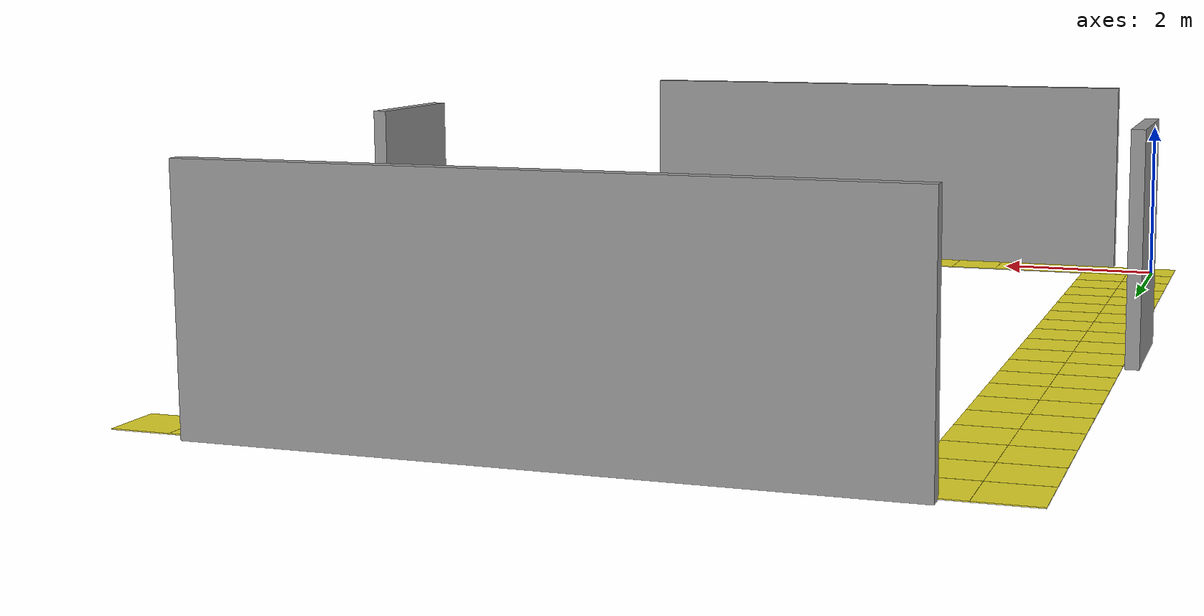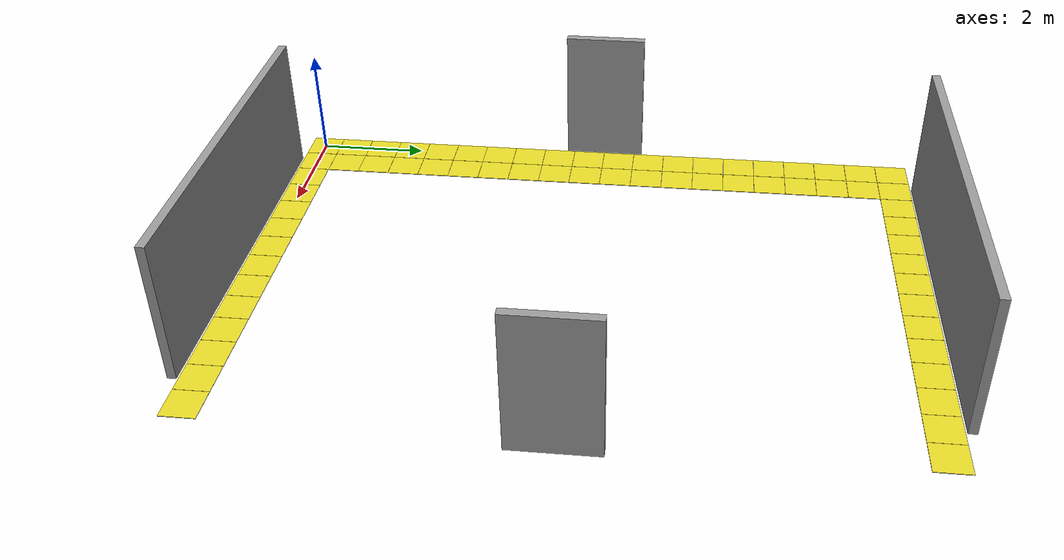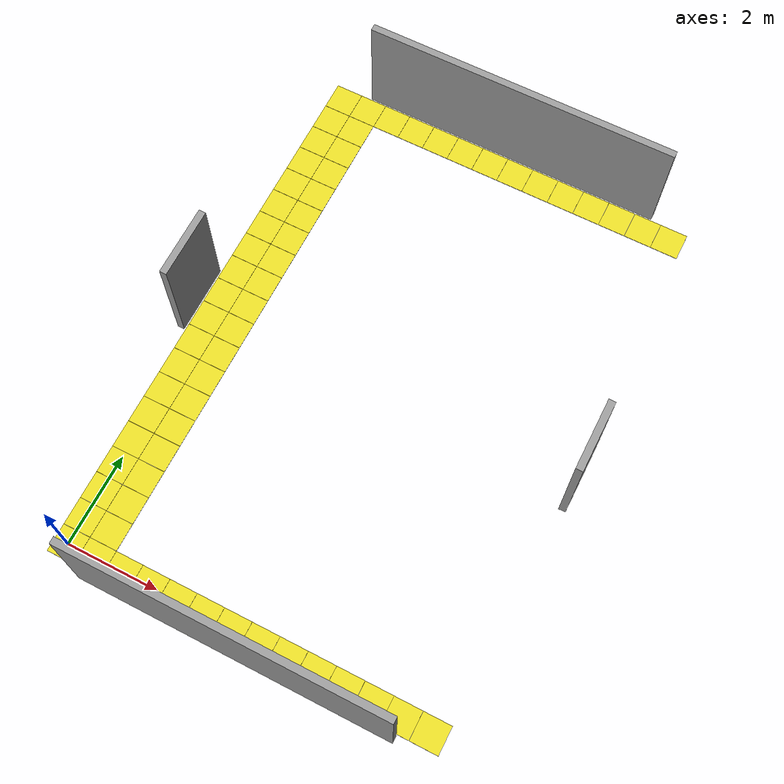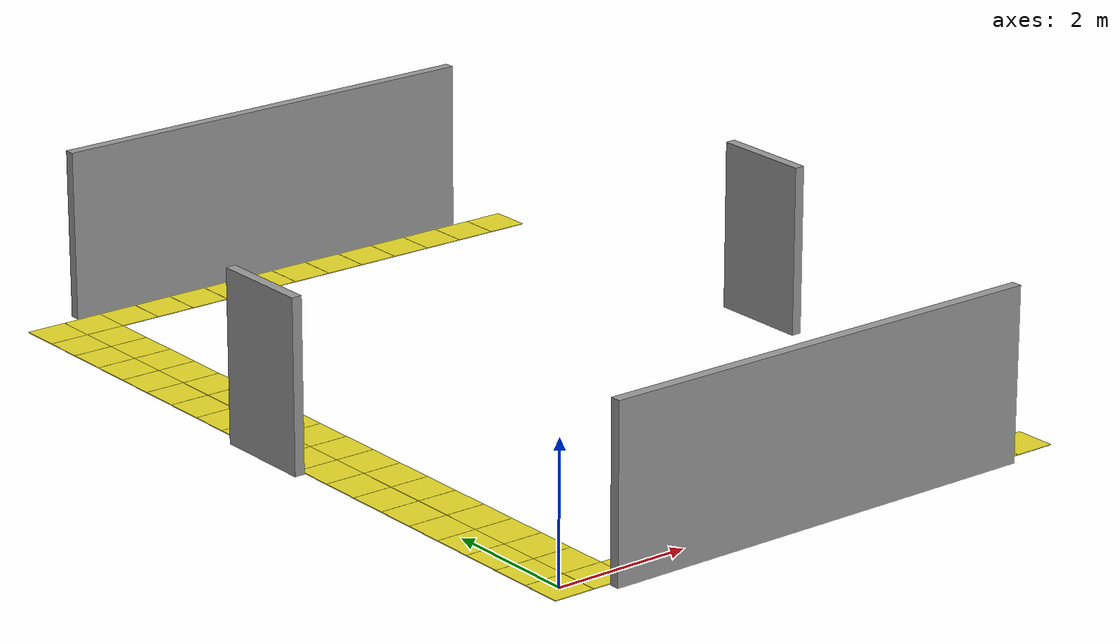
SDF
<?xml version='1.0'?>
<sdf version='1.7'>
<model  name='room_Yellow_60*60_kreuz'>
<pose>0 0 0 0 0 0</pose>
   <include><name>1</name><uri>model://Yellow_60*60</uri><pose>0 0 0.005 0 0 0</pose></include>
   <include><name>2</name><uri>model://Yellow_60*60</uri><pose>0 0.603 0.005 0 0 0</pose></include>
   <include><name>3</name><uri>model://Yellow_60*60</uri><pose>0 1.206 0.005 0 0 0</pose></include>
   <include><name>4</name><uri>model://Yellow_60*60</uri><pose>0 1.809 0.005 0 0 0</pose></include>
   <include><name>5</name><uri>model://Yellow_60*60</uri><pose>0 2.412 0.005 0 0 0</pose></include>
   <include><name>6</name><uri>model://Yellow_60*60</uri><pose>0 3.015 0.005 0 0 0</pose></include>
   <include><name>7</name><uri>model://Yellow_60*60</uri><pose>0 3.618 0.005 0 0 0</pose></include>
   <include><name>8</name><uri>model://Yellow_60*60</uri><pose>0 4.221 0.005 0 0 0</pose></include>
   <include><name>9</name><uri>model://Yellow_60*60</uri><pose>0 4.824 0.005 0 0 0</pose></include>
   <include><name>10</name><uri>model://Yellow_60*60</uri><pose>0 5.427 0.005 0 0 0</pose></include>
   <include><name>11</name><uri>model://Yellow_60*60</uri><pose>0 6.03 0.005 0 0 0</pose></include>
   <include><name>12</name><uri>model://Yellow_60*60</uri><pose>0 6.633 0.005 0 0 0</pose></include>
   <include><name>13</name><uri>model://Yellow_60*60</uri><pose>0 7.236 0.005 0 0 0</pose></include>
   <include><name>14</name><uri>model://Yellow_60*60</uri><pose>0 7.839 0.005 0 0 0</pose></include>
   <include><name>15</name><uri>model://Yellow_60*60</uri><pose>0 8.442 0.005 0 0 0</pose></include>
   <include><name>16</name><uri>model://Yellow_60*60</uri><pose>0 9.045 0.005 0 0 0</pose></include>
   <include><name>17</name><uri>model://Yellow_60*60</uri><pose>0 9.648 0.005 0 0 0</pose></include>
   <include><name>18</name><uri>model://Yellow_60*60</uri><pose>0 10.251 0.005 0 0 0</pose></include>
   <include><name>19</name><uri>model://Yellow_60*60</uri><pose>0 10.854 0.005 0 0 0</pose></include>
   <include><name>20</name><uri>model://Yellow_60*60</uri><pose>0 11.457 0.005 0 0 0</pose></include>
   <include><name>21</name><uri>model://Yellow_60*60</uri><pose>0.603 0 0.005 0 0 0</pose></include>
   <include><name>22</name><uri>model://Yellow_60*60</uri><pose>0.603 0.603 0.005 0 0 0</pose></include>
   <include><name>23</name><uri>model://Yellow_60*60</uri><pose>0.603 1.206 0.005 0 0 0</pose></include>
   <include><name>24</name><uri>model://Yellow_60*60</uri><pose>0.603 1.809 0.005 0 0 0</pose></include>
   <include><name>25</name><uri>model://Yellow_60*60</uri><pose>0.603 2.412 0.005 0 0 0</pose></include>
   <include><name>26</name><uri>model://Yellow_60*60</uri><pose>0.603 3.015 0.005 0 0 0</pose></include>
   <include><name>27</name><uri>model://Yellow_60*60</uri><pose>0.603 3.618 0.005 0 0 0</pose></include>
   <include><name>28</name><uri>model://Yellow_60*60</uri><pose>0.603 4.221 0.005 0 0 0</pose></include>
   <include><name>29</name><uri>model://Yellow_60*60</uri><pose>0.603 4.824 0.005 0 0 0</pose></include>
   <include><name>30</name><uri>model://Yellow_60*60</uri><pose>0.603 5.427 0.005 0 0 0</pose></include>
   <include><name>31</name><uri>model://Yellow_60*60</uri><pose>0.603 6.03 0.005 0 0 0</pose></include>
   <include><name>32</name><uri>model://Yellow_60*60</uri><pose>0.603 6.633 0.005 0 0 0</pose></include>
   <include><name>33</name><uri>model://Yellow_60*60</uri><pose>0.603 7.236 0.005 0 0 0</pose></include>
   <include><name>34</name><uri>model://Yellow_60*60</uri><pose>0.603 7.839 0.005 0 0 0</pose></include>
   <include><name>35</name><uri>model://Yellow_60*60</uri><pose>0.603 8.442 0.005 0 0 0</pose></include>
   <include><name>36</name><uri>model://Yellow_60*60</uri><pose>0.603 9.045 0.005 0 0 0</pose></include>
   <include><name>37</name><uri>model://Yellow_60*60</uri><pose>0.603 9.648 0.005 0 0 0</pose></include>
   <include><name>38</name><uri>model://Yellow_60*60</uri><pose>0.603 10.251 0.005 0 0 0</pose></include>
   <include><name>39</name><uri>model://Yellow_60*60</uri><pose>0.603 10.854 0.005 0 0 0</pose></include>
   <include><name>40</name><uri>model://Yellow_60*60</uri><pose>0.603 11.457 0.005 0 0 0</pose></include>
   <include><name>41</name><uri>model://Yellow_60*60</uri><pose>1.206 0 0.005 0 0 0</pose></include>
   <include><name>42</name><uri>model://Yellow_60*60</uri><pose>1.809 0 0.005 0 0 0</pose></include>
   <include><name>43</name><uri>model://Yellow_60*60</uri><pose>2.412 0 0.005 0 0 0</pose></include>
   <include><name>44</name><uri>model://Yellow_60*60</uri><pose>3.015 0 0.005 0 0 0</pose></include>
   <include><name>45</name><uri>model://Yellow_60*60</uri><pose>3.618 0 0.005 0 0 0</pose></include>
   <include><name>46</name><uri>model://Yellow_60*60</uri><pose>4.221 0 0.005 0 0 0</pose></include>
   <include><name>47</name><uri>model://Yellow_60*60</uri><pose>4.824 0 0.005 0 0 0</pose></include>
   <include><name>48</name><uri>model://Yellow_60*60</uri><pose>5.427 0 0.005 0 0 0</pose></include>
   <include><name>49</name><uri>model://Yellow_60*60</uri><pose>6.03 0 0.005 0 0 0</pose></include>
   <include><name>50</name><uri>model://Yellow_60*60</uri><pose>6.633 0 0.005 0 0 0</pose></include>
   <include><name>51</name><uri>model://Yellow_60*60</uri><pose>7.236 0 0.005 0 0 0</pose></include>
   <include><name>52</name><uri>model://Yellow_60*60</uri><pose>7.839 0 0.005 0 0 0</pose></include>
   <include><name>53</name><uri>model://Yellow_60*60</uri><pose>1.206 11.457 0.005 0 0 0</pose></include>
   <include><name>54</name><uri>model://Yellow_60*60</uri><pose>1.809 11.457 0.005 0 0 0</pose></include>
   <include><name>55</name><uri>model://Yellow_60*60</uri><pose>2.412 11.457 0.005 0 0 0</pose></include>
   <include><name>56</name><uri>model://Yellow_60*60</uri><pose>3.015 11.457 0.005 0 0 0</pose></include>
   <include><name>57</name><uri>model://Yellow_60*60</uri><pose>3.618 11.457 0.005 0 0 0</pose></include>
   <include><name>58</name><uri>model://Yellow_60*60</uri><pose>4.221 11.457 0.005 0 0 0</pose></include>
   <include><name>59</name><uri>model://Yellow_60*60</uri><pose>4.824 11.457 0.005 0 0 0</pose></include>
   <include><name>60</name><uri>model://Yellow_60*60</uri><pose>5.427 11.457 0.005 0 0 0</pose></include>
   <include><name>61</name><uri>model://Yellow_60*60</uri><pose>6.03 11.457 0.005 0 0 0</pose></include>
   <include><name>62</name><uri>model://Yellow_60*60</uri><pose>6.633 11.457 0.005 0 0 0</pose></include>
   <include><name>63</name><uri>model://Yellow_60*60</uri><pose>7.236 11.457 0.005 0 0 0</pose></include>
   <include><name>64</name><uri>model://Yellow_60*60</uri><pose>7.839 11.457 0.005 0 0 0</pose></include>

   <include><name>65</name><uri>model://wall_01</uri><pose>3.9195 -0.403 0.005 0 0 0</pose></include>
   <include><name>66</name><uri>model://wall_01</uri><pose>3.9195 11.86 0.005 0 0 0</pose></include>
   <include><name>67</name><uri>model://wall_02</uri><pose>-0.403 5.7285 0.005 0 0 0</pose></include>
   <include><name>68</name><uri>model://wall_02</uri><pose>8.242 5.7285 0.005 0 0 0</pose></include>

    <static>true</static>
    <allow_auto_disable>1</allow_auto_disable>
</model>
</sdf>

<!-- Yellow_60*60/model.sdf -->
<sdf version='1.7'>
  <model name='Yellow_60*60'>
    <link name='link_0'>
      <inertial>
        <mass>7.2</mass>
        <inertia>
          <ixx>0.21606</ixx>
          <ixy>0</ixy>
          <ixz>0</ixz>
          <iyy>0.21606</iyy>
          <iyz>0</iyz>
          <izz>0.432</izz>
        </inertia>
        <pose>0 0 0 0 -0 0</pose>
      </inertial>
      <pose>0 0 0 0 -0 0</pose>
      <gravity>1</gravity>
      <self_collide>0</self_collide>
      <kinematic>0</kinematic>
      <enable_wind>0</enable_wind>
      <visual name='visual'>
        <pose>0 0 0 0 -0 0</pose>
        <geometry>
          <box>
            <size>0.6 0.6 0.01</size>
          </box>
        </geometry>
        <material>
          <lighting>1</lighting>
          <script>
            <uri>file://materials/textures.material</uri>
            <name>Fliese/Yellow</name>
          </script>
          <shader type='pixel'>
            <normal_map>__default__</normal_map>
          </shader>
          <ambient>1 1 1 1</ambient>
          <diffuse>1 1 1 1</diffuse>
          <specular>0.01 0.01 0.01 1</specular>
          <emissive>0 0 0 1</emissive>
        </material>
        <transparency>0</transparency>
        <cast_shadows>1</cast_shadows>
      </visual>
      <collision name='collision'>
        <laser_retro>0</laser_retro>
        <max_contacts>10</max_contacts>
        <pose>0 0 0 0 -0 0</pose>
        <geometry>
          <box>
            <size>0.6 0.6 0.01</size>
          </box>
        </geometry>
        <surface>
          <friction>
            <ode>
              <mu>1</mu>
              <mu2>1</mu2>
              <fdir1>0 0 0</fdir1>
              <slip1>0</slip1>
              <slip2>0</slip2>
            </ode>
            <torsional>
              <coefficient>1</coefficient>
              <patch_radius>0</patch_radius>
              <surface_radius>0</surface_radius>
              <use_patch_radius>1</use_patch_radius>
              <ode>
                <slip>0</slip>
              </ode>
            </torsional>
          </friction>
          <bounce>
            <restitution_coefficient>0</restitution_coefficient>
            <threshold>1e+06</threshold>
          </bounce>
          <contact>
            <collide_without_contact>0</collide_without_contact>
            <collide_without_contact_bitmask>1</collide_without_contact_bitmask>
            <collide_bitmask>1</collide_bitmask>
            <ode>
              <soft_cfm>0</soft_cfm>
              <soft_erp>0.2</soft_erp>
              <kp>1e+13</kp>
              <kd>1</kd>
              <max_vel>0.01</max_vel>
              <min_depth>0</min_depth>
            </ode>
            <bullet>
              <split_impulse>1</split_impulse>
              <split_impulse_penetration_threshold>-0.01</split_impulse_penetration_threshold>
              <soft_cfm>0</soft_cfm>
              <soft_erp>0.2</soft_erp>
              <kp>1e+13</kp>
              <kd>1</kd>
            </bullet>
          </contact>
        </surface>
      </collision>
    </link>
    <static>0</static>
    <allow_auto_disable>1</allow_auto_disable>
  </model>
</sdf>

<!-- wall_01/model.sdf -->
<sdf version='1.6'>
  <model name='wall_01'>
    <pose frame=''>-5.95985 -1.1921 0 0 -0 0</pose>
    <link name='Wall_0'>
      <collision name='Wall_0_Collision'>
        <geometry>
          <box>
            <size>6.75 0.15 2.5</size>
          </box>
        </geometry>
        <pose frame=''>0 0 1.25 0 -0 0</pose>
      </collision>
      <visual name='Wall_0_Visual'>
        <pose frame=''>0 0 1.25 0 -0 0</pose>
        <geometry>
          <box>
            <size>6.75 0.15 2.5</size>
          </box>
        </geometry>
        <material>
          <script>
            <uri>file://media/materials/scripts/gazebo.material</uri>
            <name>Gazebo/Grey</name>
          </script>
          <ambient>1 1 1 1</ambient>
        </material>
        <meta>
          <layer>0</layer>
        </meta>
      </visual>
      <pose frame=''>0 0 0 0 -0 0</pose>
    </link>
    <static>1</static>
  </model>
</sdf>

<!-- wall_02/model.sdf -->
<sdf version='1.6'>
  <model name='wall_02'>
    <pose frame=''>-2.60533 -1.87112 0 0 -0 0</pose>
    <link name='Wall_0'>
      <collision name='Wall_0_Collision'>
        <geometry>
          <box>
            <size>1.5 0.15 2.5</size>
          </box>
        </geometry>
        <pose frame=''>0 0 1.25 0 -0 0</pose>
      </collision>
      <visual name='Wall_0_Visual'>
        <pose frame=''>0 0 1.25 0 -0 0</pose>
        <geometry>
          <box>
            <size>1.5 0.15 2.5</size>
          </box>
        </geometry>
        <material>
          <script>
            <uri>file://media/materials/scripts/gazebo.material</uri>
            <name>Gazebo/Grey</name>
          </script>
          <ambient>1 1 1 1</ambient>
        </material>
        <meta>
          <layer>0</layer>
        </meta>
      </visual>
      <pose frame=''>0 0 0 0 -0 1.5708</pose>
    </link>
    <static>1</static>
  </model>
</sdf>
